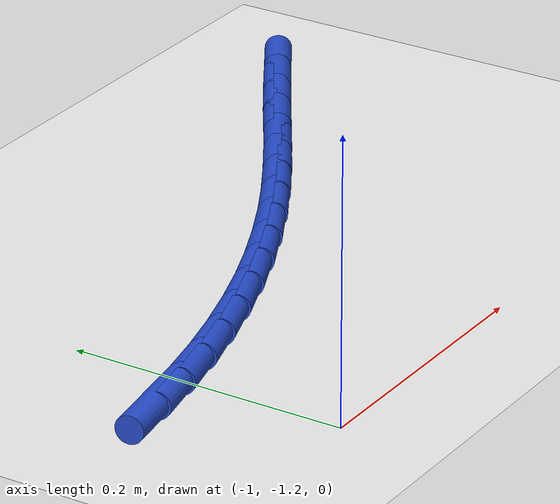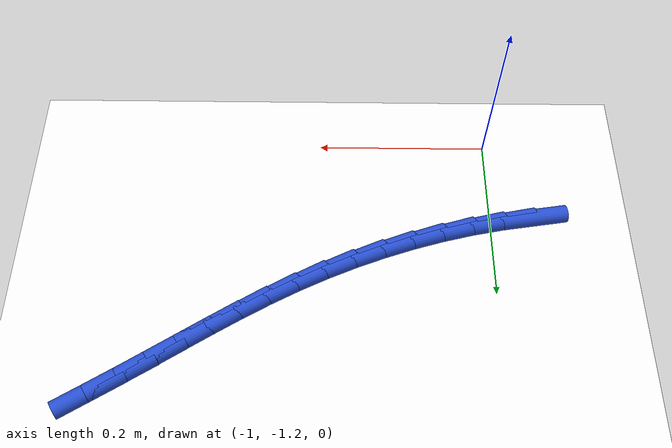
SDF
<sdf version="1.6">
 <world name="default">
  <model name="ground_plane">
   <static>1</static>
   <link name="link">
    <collision name="collision">
     <geometry><plane><normal>0 0 1</normal><size>100 100</size></plane></geometry>
     <surface><friction><ode><mu>100</mu><mu2>50</mu2></ode></friction></surface>
    </collision>
    <visual name="visual">
     <cast_shadows>0</cast_shadows>
     <geometry><plane><normal>0 0 1</normal><size>100 100</size></plane></geometry>
     <material>
      <script><uri>file://media/materials/scripts/gazebo.material</uri><name>Gazebo/WhiteGlow</name></script>
     </material>
    </visual>
   </link>
  </model>
  <model name="line">
   <link name="link_144">
    <pose>-1.0482264580809113 -1.0944435949671025 0.01 0 1.57 0.15877393040625062</pose>
    <collision name="collision">
     <geometry><cylinder><radius>0.01</radius><length>0.08</length></cylinder></geometry>
    </collision>
    <visual name="visual">
     <material>
      <script><name>Gazebo/Blue</name><uri>file://media/materials/scripts/gazebo.material</uri></script>
     </material>
     <geometry><cylinder><radius>0.01</radius><length>0.08</length></cylinder></geometry>
    </visual>
   </link>
   <link name="link_145">
    <pose>-1.012667141119731 -1.0887497763844 0.01 0 1.57 0.20603939385537076</pose>
    <collision name="collision">
     <geometry><cylinder><radius>0.01</radius><length>0.08</length></cylinder></geometry>
    </collision>
    <visual name="visual">
     <material>
      <script><name>Gazebo/Blue</name><uri>file://media/materials/scripts/gazebo.material</uri></script>
     </material>
     <geometry><cylinder><radius>0.01</radius><length>0.08</length></cylinder></geometry>
    </visual>
   </link>
   <link name="link_146">
    <pose>-0.9773050112096926 -1.081358900990243 0.01 0 1.57 0.25147693855896297</pose>
    <collision name="collision">
     <geometry><cylinder><radius>0.01</radius><length>0.08</length></cylinder></geometry>
    </collision>
    <visual name="visual">
     <material>
      <script><name>Gazebo/Blue</name><uri>file://media/materials/scripts/gazebo.material</uri></script>
     </material>
     <geometry><cylinder><radius>0.01</radius><length>0.08</length></cylinder></geometry>
    </visual>
   </link>
   <link name="link_147">
    <pose>-0.9422412208401734 -1.072350460985959 0.01 0 1.57 0.2953486520144053</pose>
    <collision name="collision">
     <geometry><cylinder><radius>0.01</radius><length>0.08</length></cylinder></geometry>
    </collision>
    <visual name="visual">
     <material>
      <script><name>Gazebo/Blue</name><uri>file://media/materials/scripts/gazebo.material</uri></script>
     </material>
     <geometry><cylinder><radius>0.01</radius><length>0.08</length></cylinder></geometry>
    </visual>
   </link>
   <link name="link_148">
    <pose>-0.907576922500551 -1.0618039485728774 0.01 0 1.57 0.33792109111890517</pose>
    <collision name="collision">
     <geometry><cylinder><radius>0.01</radius><length>0.08</length></cylinder></geometry>
    </collision>
    <visual name="visual">
     <material>
      <script><name>Gazebo/Blue</name><uri>file://media/materials/scripts/gazebo.material</uri></script>
     </material>
     <geometry><cylinder><radius>0.01</radius><length>0.08</length></cylinder></geometry>
    </visual>
   </link>
   <link name="link_149">
    <pose>-0.8734132686802013 -1.0497988559523248 0.01 0 1.57 0.3794640661307618</pose>
    <collision name="collision">
     <geometry><cylinder><radius>0.01</radius><length>0.08</length></cylinder></geometry>
    </collision>
    <visual name="visual">
     <material>
      <script><name>Gazebo/Blue</name><uri>file://media/materials/scripts/gazebo.material</uri></script>
     </material>
     <geometry><cylinder><radius>0.01</radius><length>0.08</length></cylinder></geometry>
    </visual>
   </link>
   <link name="link_150">
    <pose>-0.8398514118685024 -1.036414675325631 0.01 0 1.57 0.4202509248569471</pose>
    <collision name="collision">
     <geometry><cylinder><radius>0.01</radius><length>0.08</length></cylinder></geometry>
    </collision>
    <visual name="visual">
     <material>
      <script><name>Gazebo/Blue</name><uri>file://media/materials/scripts/gazebo.material</uri></script>
     </material>
     <geometry><cylinder><radius>0.01</radius><length>0.08</length></cylinder></geometry>
    </visual>
   </link>
   <link name="link_151">
    <pose>-0.8069925045548302 -1.021730898894122 0.01 0 1.57 0.46056006619125656</pose>
    <collision name="collision">
     <geometry><cylinder><radius>0.01</radius><length>0.08</length></cylinder></geometry>
    </collision>
    <visual name="visual">
     <material>
      <script><name>Gazebo/Blue</name><uri>file://media/materials/scripts/gazebo.material</uri></script>
     </material>
     <geometry><cylinder><radius>0.01</radius><length>0.08</length></cylinder></geometry>
    </visual>
   </link>
   <link name="link_152">
    <pose>-0.7749376989265574 -1.0058270190121132 0.01 0 1.57 0.49922017986063255</pose>
    <collision name="collision">
     <geometry><cylinder><radius>0.01</radius><length>0.08</length></cylinder></geometry>
    </collision>
    <visual name="visual">
     <material>
      <script><name>Gazebo/Blue</name><uri>file://media/materials/scripts/gazebo.material</uri></script>
     </material>
     <geometry><cylinder><radius>0.01</radius><length>0.08</length></cylinder></geometry>
    </visual>
   </link>
   <link name="link_153">
    <pose>-0.7437321122886583 -0.9888109132480805 0.01 0 1.57 0.5306940380458749</pose>
    <collision name="collision">
     <geometry><cylinder><radius>0.01</radius><length>0.08</length></cylinder></geometry>
    </collision>
    <visual name="visual">
     <material>
      <script><name>Gazebo/Blue</name><uri>file://media/materials/scripts/gazebo.material</uri></script>
     </material>
     <geometry><cylinder><radius>0.01</radius><length>0.08</length></cylinder></geometry>
    </visual>
   </link>
   <link name="link_154">
    <pose>-0.7132084022985739 -0.9708980834277303 0.01 0 1.57 0.5533514891589206</pose>
    <collision name="collision">
     <geometry><cylinder><radius>0.01</radius><length>0.08</length></cylinder></geometry>
    </collision>
    <visual name="visual">
     <material>
      <script><name>Gazebo/Blue</name><uri>file://media/materials/scripts/gazebo.material</uri></script>
     </material>
     <geometry><cylinder><radius>0.01</radius><length>0.08</length></cylinder></geometry>
    </visual>
   </link>
   <link name="link_155">
    <pose>-0.6831488810240217 -0.9523295346041376 0.01 0 1.57 0.5669999206774919</pose>
    <collision name="collision">
     <geometry><cylinder><radius>0.01</radius><length>0.08</length></cylinder></geometry>
    </collision>
    <visual name="visual">
     <material>
      <script><name>Gazebo/Blue</name><uri>file://media/materials/scripts/gazebo.material</uri></script>
     </material>
     <geometry><cylinder><radius>0.01</radius><length>0.08</length></cylinder></geometry>
    </visual>
   </link>
   <link name="link_156">
    <pose>-0.6533358605327214 -0.9333462718303799 0.01 0 1.57 0.5715745626389038</pose>
    <collision name="collision">
     <geometry><cylinder><radius>0.01</radius><length>0.08</length></cylinder></geometry>
    </collision>
    <visual name="visual">
     <material>
      <script><name>Gazebo/Blue</name><uri>file://media/materials/scripts/gazebo.material</uri></script>
     </material>
     <geometry><cylinder><radius>0.01</radius><length>0.08</length></cylinder></geometry>
    </visual>
   </link>
   <link name="link_157">
    <pose>-0.6235516528923911 -0.9141893001595331 0.01 0 1.57 0.5671168177842464</pose>
    <collision name="collision">
     <geometry><cylinder><radius>0.01</radius><length>0.08</length></cylinder></geometry>
    </collision>
    <visual name="visual">
     <material>
      <script><name>Gazebo/Blue</name><uri>file://media/materials/scripts/gazebo.material</uri></script>
     </material>
     <geometry><cylinder><radius>0.01</radius><length>0.08</length></cylinder></geometry>
    </visual>
   </link>
   <link name="link_158">
    <pose>-0.5935788271611548 -0.8950993576849726 0.01 0 1.57 0.5573232243152976</pose>
    <collision name="collision">
     <geometry><cylinder><radius>0.01</radius><length>0.08</length></cylinder></geometry>
    </collision>
    <visual name="visual">
     <material>
      <script><name>Gazebo/Blue</name><uri>file://media/materials/scripts/gazebo.material</uri></script>
     </material>
     <geometry><cylinder><radius>0.01</radius><length>0.08</length></cylinder></geometry>
    </visual>
   </link>
   <link name="link_159">
    <pose>-0.5632906584504833 -0.8762229577331989 0.01 0 1.57 0.5510824291055634</pose>
    <collision name="collision">
     <geometry><cylinder><radius>0.01</radius><length>0.08</length></cylinder></geometry>
    </collision>
    <visual name="visual">
     <material>
      <script><name>Gazebo/Blue</name><uri>file://media/materials/scripts/gazebo.material</uri></script>
     </material>
     <geometry><cylinder><radius>0.01</radius><length>0.08</length></cylinder></geometry>
    </visual>
   </link>
  </model>
 </world>
</sdf>
